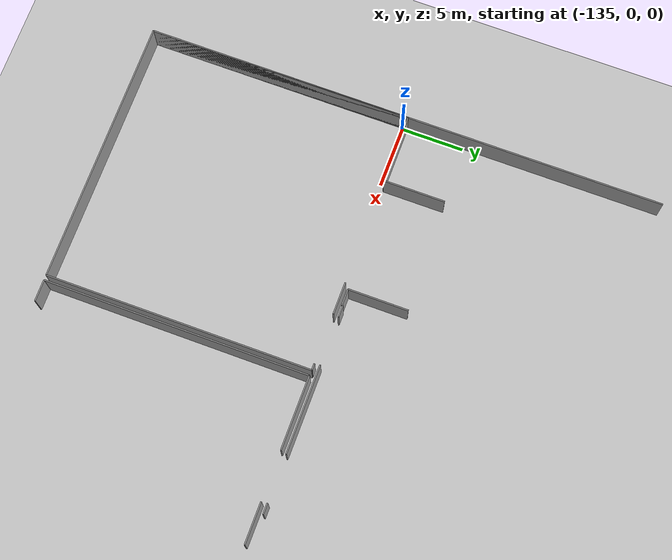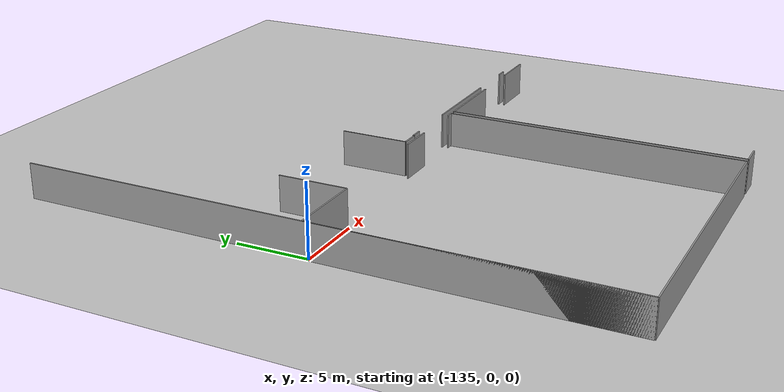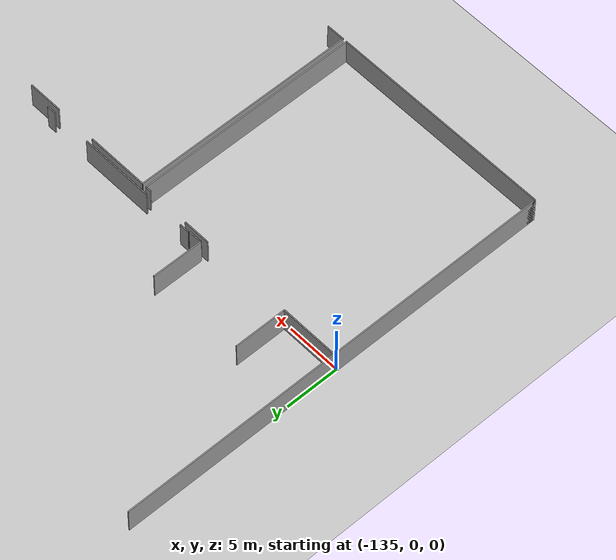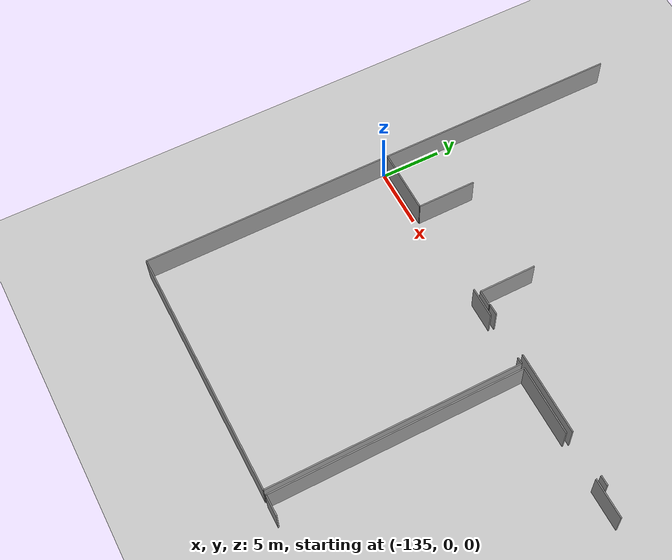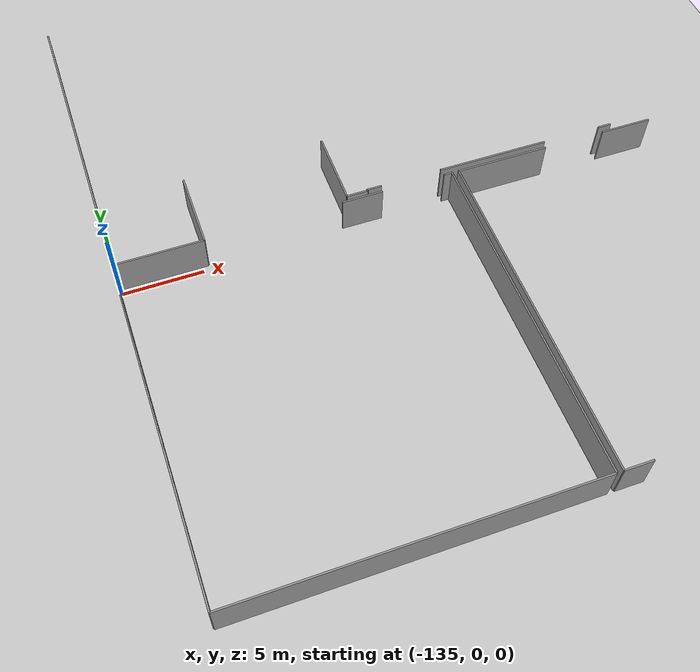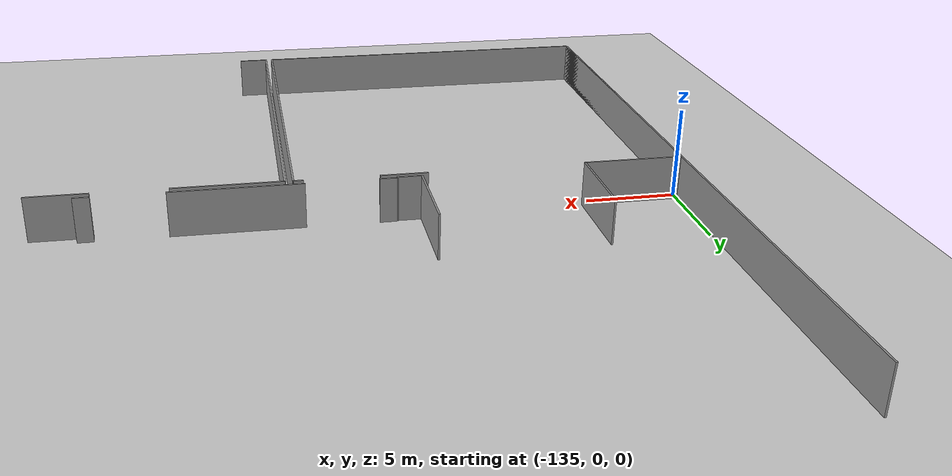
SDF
<sdf version="1.6">
 <world name="default">
  <model name="ground_plane">
   <static>1</static>
   <link name="link">
    <collision name="collision">
     <geometry><plane><normal>0 0 1</normal><size>100 100</size></plane></geometry>
     <surface><friction><ode><mu>100</mu><mu2>50</mu2></ode></friction></surface>
    </collision>
    <visual name="visual">
     <cast_shadows>0</cast_shadows>
     <geometry><plane><normal>0 0 1</normal><size>100 100</size></plane></geometry>
     <material>
      <script><uri>file://media/materials/scripts/gazebo.material</uri><name>Gazebo/Grey</name></script>
     </material>
    </visual>
   </link>
  </model>
  <model name="50037764_PLAN1">
   <static>1</static>
   <link name="Wall_13">
    <collision name="Wall_13_Collision">
     <geometry><box><size>0.864304235091 0.1 2.5</size></box></geometry>
     <pose>0.432152117545 0 1.25 0 0 0</pose>
    </collision>
    <visual name="Wall_13_Visual">
     <pose>0.432152117545 0 1.25 0 0 0</pose>
     <geometry><box><size>0.864304235091 0.1 2.5</size></box></geometry>
     <material>
      <script><uri>file://media/materials/scripts/gazebo.material</uri><name>Gazebo/Grey</name></script>
      <ambient>1 1 1 1</ambient>
     </material>
    </visual>
    <pose>32.2820173878 -20.0217347094 0 0 0 3.14159265359</pose>
   </link>
   <link name="Wall_14">
    <collision name="Wall_14_Collision">
     <geometry><box><size>7.04763841578 0.1 2.5</size></box></geometry>
     <pose>3.52381920789 0 1.25 0 0 0</pose>
    </collision>
    <visual name="Wall_14_Visual">
     <pose>3.52381920789 0 1.25 0 0 0</pose>
     <geometry><box><size>7.04763841578 0.1 2.5</size></box></geometry>
     <material>
      <script><uri>file://media/materials/scripts/gazebo.material</uri><name>Gazebo/Grey</name></script>
      <ambient>1 1 1 1</ambient>
     </material>
    </visual>
    <pose>27.6450251665 -20.0217347094 0 0 0 3.14159265359</pose>
   </link>
   <link name="Wall_15">
    <collision name="Wall_15_Collision">
     <geometry><box><size>0.929889674106 0.1 2.5</size></box></geometry>
     <pose>0.464944837053 0 1.25 0 0 0</pose>
    </collision>
    <visual name="Wall_15_Visual">
     <pose>0.464944837053 0 1.25 0 0 0</pose>
     <geometry><box><size>0.929889674106 0.1 2.5</size></box></geometry>
     <material>
      <script><uri>file://media/materials/scripts/gazebo.material</uri><name>Gazebo/Grey</name></script>
      <ambient>1 1 1 1</ambient>
     </material>
    </visual>
    <pose>16.7247953633 -20.0217347094 0 0 0 3.14159265359</pose>
   </link>
   <link name="Wall_16">
    <collision name="Wall_16_Collision">
     <geometry><box><size>0.0747368956226 0.1 2.5</size></box></geometry>
     <pose>0.0373684478113 0 1.25 0 0 0</pose>
    </collision>
    <visual name="Wall_16_Visual">
     <pose>0.0373684478113 0 1.25 0 0 0</pose>
     <geometry><box><size>0.0747368956226 0.1 2.5</size></box></geometry>
     <material>
      <script><uri>file://media/materials/scripts/gazebo.material</uri><name>Gazebo/Grey</name></script>
      <ambient>1 1 1 1</ambient>
     </material>
    </visual>
    <pose>15.7949056892 -20.0217347094 0 0 0 -1.57079632679</pose>
   </link>
   <link name="Wall_17">
    <collision name="Wall_17_Collision">
     <geometry><box><size>1.32965580355 0.1 2.5</size></box></geometry>
     <pose>0.664827901774 0 1.25 0 0 0</pose>
    </collision>
    <visual name="Wall_17_Visual">
     <pose>0.664827901774 0 1.25 0 0 0</pose>
     <geometry><box><size>1.32965580355 0.1 2.5</size></box></geometry>
     <material>
      <script><uri>file://media/materials/scripts/gazebo.material</uri><name>Gazebo/Grey</name></script>
      <ambient>1 1 1 1</ambient>
     </material>
    </visual>
    <pose>15.7949056892 -20.0964716051 0 0 0 3.14159265359</pose>
   </link>
   <link name="Wall_18">
    <collision name="Wall_18_Collision">
     <geometry><box><size>4.78430525192 0.1 2.5</size></box></geometry>
     <pose>2.39215262596 0 1.25 0 0 0</pose>
    </collision>
    <visual name="Wall_18_Visual">
     <pose>2.39215262596 0 1.25 0 0 0</pose>
     <geometry><box><size>4.78430525192 0.1 2.5</size></box></geometry>
     <material>
      <script><uri>file://media/materials/scripts/gazebo.material</uri><name>Gazebo/Grey</name></script>
      <ambient>1 1 1 1</ambient>
     </material>
    </visual>
    <pose>14.4652498856 -20.0964716051 0 0 0 1.57079632679</pose>
   </link>
   <link name="Wall_24">
    <collision name="Wall_24_Collision">
     <geometry><box><size>21.2115511719 0.1 2.5</size></box></geometry>
     <pose>10.6057755859 0 1.25 0 0 0</pose>
    </collision>
    <visual name="Wall_24_Visual">
     <pose>10.6057755859 0 1.25 0 0 0</pose>
     <geometry><box><size>21.2115511719 0.1 2.5</size></box></geometry>
     <material>
      <script><uri>file://media/materials/scripts/gazebo.material</uri><name>Gazebo/Grey</name></script>
      <ambient>1 1 1 1</ambient>
     </material>
    </visual>
    <pose>21.2115511719 -41.6410341146 0 0 0 3.14159265359</pose>
   </link>
   <link name="Wall_25">
    <collision name="Wall_25_Collision">
     <geometry><box><size>21.1568966394 0.1 2.5</size></box></geometry>
     <pose>10.5784483197 0 1.25 0 0 0</pose>
    </collision>
    <visual name="Wall_25_Visual">
     <pose>10.5784483197 0 1.25 0 0 0</pose>
     <geometry><box><size>21.1568966394 0.1 2.5</size></box></geometry>
     <material>
      <script><uri>file://media/materials/scripts/gazebo.material</uri><name>Gazebo/Grey</name></script>
      <ambient>1 1 1 1</ambient>
     </material>
    </visual>
    <pose>0.0 -41.6410341146 0 0 0 1.57079632679</pose>
   </link>
   <link name="Wall_26">
    <collision name="Wall_26_Collision">
     <geometry><box><size>5.47643499924 0.1 2.5</size></box></geometry>
     <pose>2.73821749962 0 1.25 0 0 0</pose>
    </collision>
    <visual name="Wall_26_Visual">
     <pose>2.73821749962 0 1.25 0 0 0</pose>
     <geometry><box><size>5.47643499924 0.1 2.5</size></box></geometry>
     <material>
      <script><uri>file://media/materials/scripts/gazebo.material</uri><name>Gazebo/Grey</name></script>
      <ambient>1 1 1 1</ambient>
     </material>
    </visual>
    <pose>0.0 -20.4841374752 0 0 0 0.0</pose>
   </link>
   <link name="Wall_27">
    <collision name="Wall_27_Collision">
     <geometry><box><size>4.89338553053 0.1 2.5</size></box></geometry>
     <pose>2.44669276527 0 1.25 0 0 0</pose>
    </collision>
    <visual name="Wall_27_Visual">
     <pose>2.44669276527 0 1.25 0 0 0</pose>
     <geometry><box><size>4.89338553053 0.1 2.5</size></box></geometry>
     <material>
      <script><uri>file://media/materials/scripts/gazebo.material</uri><name>Gazebo/Grey</name></script>
      <ambient>1 1 1 1</ambient>
     </material>
    </visual>
    <pose>5.47643499924 -20.4841374752 0 0 0 1.57079632679</pose>
   </link>
   <link name="Wall_30">
    <collision name="Wall_30_Collision">
     <geometry><box><size>2.57018658803 0.1 2.5</size></box></geometry>
     <pose>1.28509329402 0 1.25 0 0 0</pose>
    </collision>
    <visual name="Wall_30_Visual">
     <pose>1.28509329402 0 1.25 0 0 0</pose>
     <geometry><box><size>2.57018658803 0.1 2.5</size></box></geometry>
     <material>
      <script><uri>file://media/materials/scripts/gazebo.material</uri><name>Gazebo/Grey</name></script>
      <ambient>1 1 1 1</ambient>
     </material>
    </visual>
    <pose>14.0638568305 -20.4554120698 0 0 0 0.0</pose>
   </link>
   <link name="Wall_31">
    <collision name="Wall_31_Collision">
     <geometry><box><size>0.527733997661 0.1 2.5</size></box></geometry>
     <pose>0.263866998831 0 1.25 0 0 0</pose>
    </collision>
    <visual name="Wall_31_Visual">
     <pose>0.263866998831 0 1.25 0 0 0</pose>
     <geometry><box><size>0.527733997661 0.1 2.5</size></box></geometry>
     <material>
      <script><uri>file://media/materials/scripts/gazebo.material</uri><name>Gazebo/Grey</name></script>
      <ambient>1 1 1 1</ambient>
     </material>
    </visual>
    <pose>20.6563628044 -20.4554120698 0 0 0 0.0</pose>
   </link>
   <link name="Wall_32">
    <collision name="Wall_32_Collision">
     <geometry><box><size>21.1856398338 0.1 2.5</size></box></geometry>
     <pose>10.5928199169 0 1.25 0 0 0</pose>
    </collision>
    <visual name="Wall_32_Visual">
     <pose>10.5928199169 0 1.25 0 0 0</pose>
     <geometry><box><size>21.1856398338 0.1 2.5</size></box></geometry>
     <material>
      <script><uri>file://media/materials/scripts/gazebo.material</uri><name>Gazebo/Grey</name></script>
      <ambient>1 1 1 1</ambient>
     </material>
    </visual>
    <pose>21.1840968021 -20.4554120698 0 0 0 -1.56950043119</pose>
   </link>
   <link name="Wall_34">
    <collision name="Wall_34_Collision">
     <geometry><box><size>1.73953937668 0.1 2.5</size></box></geometry>
     <pose>0.869769688342 0 1.25 0 0 0</pose>
    </collision>
    <visual name="Wall_34_Visual">
     <pose>0.869769688342 0 1.25 0 0 0</pose>
     <geometry><box><size>1.73953937668 0.1 2.5</size></box></geometry>
     <material>
      <script><uri>file://media/materials/scripts/gazebo.material</uri><name>Gazebo/Grey</name></script>
      <ambient>1 1 1 1</ambient>
     </material>
    </visual>
    <pose>23.3529920179 -41.6410341146 0 0 0 3.14159265359</pose>
   </link>
   <link name="Wall_35">
    <collision name="Wall_35_Collision">
     <geometry><box><size>21.1635060247 0.1 2.5</size></box></geometry>
     <pose>10.5817530124 0 1.25 0 0 0</pose>
    </collision>
    <visual name="Wall_35_Visual">
     <pose>10.5817530124 0 1.25 0 0 0</pose>
     <geometry><box><size>21.1635060247 0.1 2.5</size></box></geometry>
     <material>
      <script><uri>file://media/materials/scripts/gazebo.material</uri><name>Gazebo/Grey</name></script>
      <ambient>1 1 1 1</ambient>
     </material>
    </visual>
    <pose>21.6134526412 -41.6410341146 0 0 0 1.57079632679</pose>
   </link>
   <link name="Wall_36">
    <collision name="Wall_36_Collision">
     <geometry><box><size>5.89023336214 0.1 2.5</size></box></geometry>
     <pose>2.94511668107 0 1.25 0 0 0</pose>
    </collision>
    <visual name="Wall_36_Visual">
     <pose>2.94511668107 0 1.25 0 0 0</pose>
     <geometry><box><size>5.89023336214 0.1 2.5</size></box></geometry>
     <material>
      <script><uri>file://media/materials/scripts/gazebo.material</uri><name>Gazebo/Grey</name></script>
      <ambient>1 1 1 1</ambient>
     </material>
    </visual>
    <pose>21.6134526412 -20.4775280899 0 0 0 0.0</pose>
   </link>
   <link name="Wall_37">
    <collision name="Wall_37_Collision">
     <geometry><box><size>3.2894402359 0.1 2.5</size></box></geometry>
     <pose>1.64472011795 0 1.25 0 0 0</pose>
    </collision>
    <visual name="Wall_37_Visual">
     <pose>1.64472011795 0 1.25 0 0 0</pose>
     <geometry><box><size>3.2894402359 0.1 2.5</size></box></geometry>
     <material>
      <script><uri>file://media/materials/scripts/gazebo.material</uri><name>Gazebo/Grey</name></script>
      <ambient>1 1 1 1</ambient>
     </material>
    </visual>
    <pose>31.473892928 -20.4775280899 0 0 0 0.0</pose>
   </link>
   <link name="Wall_499">
    <collision name="Wall_499_Collision">
     <geometry><box><size>41.6410341146 0.1 2.5</size></box></geometry>
     <pose>20.8205170573 0 1.25 0 0 0</pose>
    </collision>
    <visual name="Wall_499_Visual">
     <pose>20.8205170573 0 1.25 0 0 0</pose>
     <geometry><box><size>41.6410341146 0.1 2.5</size></box></geometry>
     <material>
      <script><uri>file://media/materials/scripts/gazebo.material</uri><name>Gazebo/Grey</name></script>
      <ambient>1 1 1 1</ambient>
     </material>
    </visual>
    <pose>0.0 -41.6410341146 0 0 0 1.57079632679</pose>
   </link>
   <pose>-135.1 20.8410341146 0 0 0 0</pose>
  </model>
 </world>
</sdf>
